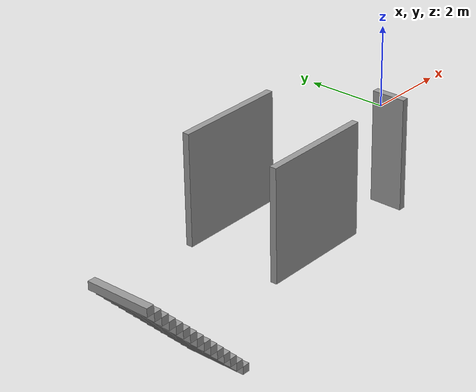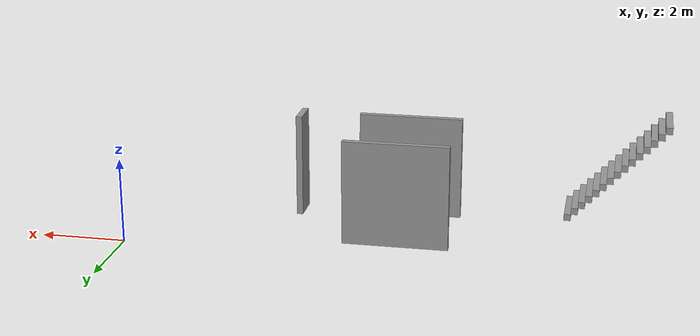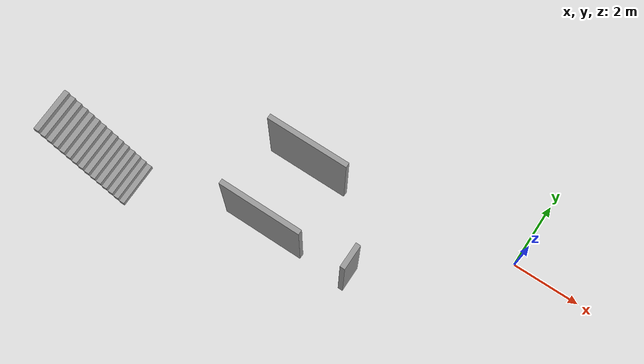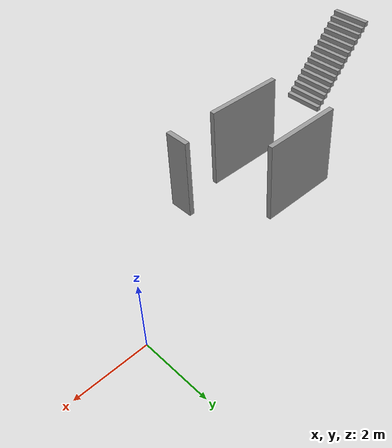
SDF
<sdf version="1.7">
 <model name="batimentH">
  <link name="Stairs_1">
   <visual name="Stairs_1_Visual_0">
    <pose>-10.1559 -3.96803 0.083333 0 -0 -1.5708</pose>
    <geometry><box><size>1.32885 0.162742 0.166667</size></box></geometry>
    <material>
     <script><uri>file://media/materials/scripts/gazebo.material</uri><name>Gazebo/Grey</name></script>
     <ambient>1 1 1 1</ambient>
     <shader type="pixel"/>
    </material>
    <meta><layer>0</layer></meta>
   </visual>
   <visual name="Stairs_1_Visual_1">
    <pose>-10.3187 -3.96803 0.25 0 -0 -1.5708</pose>
    <geometry><box><size>1.32885 0.162742 0.166667</size></box></geometry>
    <material>
     <script><uri>file://media/materials/scripts/gazebo.material</uri><name>Gazebo/Grey</name></script>
     <ambient>1 1 1 1</ambient>
     <shader type="pixel"/>
    </material>
    <meta><layer>0</layer></meta>
   </visual>
   <visual name="Stairs_1_Visual_2">
    <pose>-10.4814 -3.96803 0.416667 0 -0 -1.5708</pose>
    <geometry><box><size>1.32885 0.162742 0.166667</size></box></geometry>
    <material>
     <script><uri>file://media/materials/scripts/gazebo.material</uri><name>Gazebo/Grey</name></script>
     <ambient>1 1 1 1</ambient>
     <shader type="pixel"/>
    </material>
    <meta><layer>0</layer></meta>
   </visual>
   <visual name="Stairs_1_Visual_3">
    <pose>-10.6442 -3.96803 0.583333 0 -0 -1.5708</pose>
    <geometry><box><size>1.32885 0.162742 0.166667</size></box></geometry>
    <material>
     <script><uri>file://media/materials/scripts/gazebo.material</uri><name>Gazebo/Grey</name></script>
     <ambient>1 1 1 1</ambient>
     <shader type="pixel"/>
    </material>
    <meta><layer>0</layer></meta>
   </visual>
   <visual name="Stairs_1_Visual_4">
    <pose>-10.8069 -3.96803 0.75 0 -0 -1.5708</pose>
    <geometry><box><size>1.32885 0.162742 0.166667</size></box></geometry>
    <material>
     <script><uri>file://media/materials/scripts/gazebo.material</uri><name>Gazebo/Grey</name></script>
     <ambient>1 1 1 1</ambient>
     <shader type="pixel"/>
    </material>
    <meta><layer>0</layer></meta>
   </visual>
   <visual name="Stairs_1_Visual_5">
    <pose>-10.9697 -3.96803 0.916667 0 -0 -1.5708</pose>
    <geometry><box><size>1.32885 0.162742 0.166667</size></box></geometry>
    <material>
     <script><uri>file://media/materials/scripts/gazebo.material</uri><name>Gazebo/Grey</name></script>
     <ambient>1 1 1 1</ambient>
     <shader type="pixel"/>
    </material>
    <meta><layer>0</layer></meta>
   </visual>
   <visual name="Stairs_1_Visual_6">
    <pose>-11.1324 -3.96803 1.08333 0 -0 -1.5708</pose>
    <geometry><box><size>1.32885 0.162742 0.166667</size></box></geometry>
    <material>
     <script><uri>file://media/materials/scripts/gazebo.material</uri><name>Gazebo/Grey</name></script>
     <ambient>1 1 1 1</ambient>
     <shader type="pixel"/>
    </material>
    <meta><layer>0</layer></meta>
   </visual>
   <visual name="Stairs_1_Visual_7">
    <pose>-11.2951 -3.96803 1.25 0 -0 -1.5708</pose>
    <geometry><box><size>1.32885 0.162742 0.166667</size></box></geometry>
    <material>
     <script><uri>file://media/materials/scripts/gazebo.material</uri><name>Gazebo/Grey</name></script>
     <ambient>1 1 1 1</ambient>
     <shader type="pixel"/>
    </material>
    <meta><layer>0</layer></meta>
   </visual>
   <visual name="Stairs_1_Visual_8">
    <pose>-11.4579 -3.96803 1.41667 0 -0 -1.5708</pose>
    <geometry><box><size>1.32885 0.162742 0.166667</size></box></geometry>
    <material>
     <script><uri>file://media/materials/scripts/gazebo.material</uri><name>Gazebo/Grey</name></script>
     <ambient>1 1 1 1</ambient>
     <shader type="pixel"/>
    </material>
    <meta><layer>0</layer></meta>
   </visual>
   <visual name="Stairs_1_Visual_9">
    <pose>-11.6206 -3.96803 1.58333 0 -0 -1.5708</pose>
    <geometry><box><size>1.32885 0.162742 0.166667</size></box></geometry>
    <material>
     <script><uri>file://media/materials/scripts/gazebo.material</uri><name>Gazebo/Grey</name></script>
     <ambient>1 1 1 1</ambient>
     <shader type="pixel"/>
    </material>
    <meta><layer>0</layer></meta>
   </visual>
   <visual name="Stairs_1_Visual_10">
    <pose>-11.7834 -3.96803 1.75 0 -0 -1.5708</pose>
    <geometry><box><size>1.32885 0.162742 0.166667</size></box></geometry>
    <material>
     <script><uri>file://media/materials/scripts/gazebo.material</uri><name>Gazebo/Grey</name></script>
     <ambient>1 1 1 1</ambient>
     <shader type="pixel"/>
    </material>
    <meta><layer>0</layer></meta>
   </visual>
   <visual name="Stairs_1_Visual_11">
    <pose>-11.9461 -3.96803 1.91667 0 -0 -1.5708</pose>
    <geometry><box><size>1.32885 0.162742 0.166667</size></box></geometry>
    <material>
     <script><uri>file://media/materials/scripts/gazebo.material</uri><name>Gazebo/Grey</name></script>
     <ambient>1 1 1 1</ambient>
     <shader type="pixel"/>
    </material>
    <meta><layer>0</layer></meta>
   </visual>
   <visual name="Stairs_1_Visual_12">
    <pose>-12.1089 -3.96803 2.08333 0 -0 -1.5708</pose>
    <geometry><box><size>1.32885 0.162742 0.166667</size></box></geometry>
    <material>
     <script><uri>file://media/materials/scripts/gazebo.material</uri><name>Gazebo/Grey</name></script>
     <ambient>1 1 1 1</ambient>
     <shader type="pixel"/>
    </material>
    <meta><layer>0</layer></meta>
   </visual>
   <visual name="Stairs_1_Visual_13">
    <pose>-12.2716 -3.96803 2.25 0 -0 -1.5708</pose>
    <geometry><box><size>1.32885 0.162742 0.166667</size></box></geometry>
    <material>
     <script><uri>file://media/materials/scripts/gazebo.material</uri><name>Gazebo/Grey</name></script>
     <ambient>1 1 1 1</ambient>
     <shader type="pixel"/>
    </material>
    <meta><layer>0</layer></meta>
   </visual>
   <visual name="Stairs_1_Visual_14">
    <pose>-12.4343 -3.96803 2.41667 0 -0 -1.5708</pose>
    <geometry><box><size>1.32885 0.162742 0.166667</size></box></geometry>
    <material>
     <script><uri>file://media/materials/scripts/gazebo.material</uri><name>Gazebo/Grey</name></script>
     <ambient>1 1 1 1</ambient>
     <shader type="pixel"/>
    </material>
    <meta><layer>0</layer></meta>
   </visual>
   <collision name="Stairs_1_Collision_0">
    <pose>-10.1559 -3.96803 0.083333 0 0 -1.5708</pose>
    <geometry><box><size>1.32885 0.162742 0.166667</size></box></geometry>
    <surface>
     <friction>
      <ode><mu>1</mu><mu2>1</mu2><fdir1>0 0 0</fdir1><slip1>0</slip1><slip2>0</slip2></ode>
      <torsional>
       <coefficient>1</coefficient>
       <patch_radius>0</patch_radius>
       <surface_radius>0</surface_radius>
       <use_patch_radius>1</use_patch_radius>
       <ode><slip>0</slip></ode>
      </torsional>
     </friction>
     <bounce><restitution_coefficient>0</restitution_coefficient><threshold>1e+06</threshold></bounce>
     <contact>
      <collide_without_contact>0</collide_without_contact>
      <collide_without_contact_bitmask>1</collide_without_contact_bitmask>
      <collide_bitmask>1</collide_bitmask>
      <ode>
       <soft_cfm>0</soft_cfm>
       <soft_erp>0.2</soft_erp>
       <kp>1e+13</kp>
       <kd>1</kd>
       <max_vel>0.01</max_vel>
       <min_depth>0</min_depth>
      </ode>
      <bullet>
       <split_impulse>1</split_impulse>
       <split_impulse_penetration_threshold>-0.01</split_impulse_penetration_threshold>
       <soft_cfm>0</soft_cfm>
       <soft_erp>0.2</soft_erp>
       <kp>1e+13</kp>
       <kd>1</kd>
      </bullet>
     </contact>
    </surface>
   </collision>
   <collision name="Stairs_1_Collision_1">
    <pose>-10.3187 -3.96803 0.25 0 0 -1.5708</pose>
    <geometry><box><size>1.32885 0.162742 0.166667</size></box></geometry>
    <surface>
     <friction>
      <ode><mu>1</mu><mu2>1</mu2><fdir1>0 0 0</fdir1><slip1>0</slip1><slip2>0</slip2></ode>
      <torsional>
       <coefficient>1</coefficient>
       <patch_radius>0</patch_radius>
       <surface_radius>0</surface_radius>
       <use_patch_radius>1</use_patch_radius>
       <ode><slip>0</slip></ode>
      </torsional>
     </friction>
     <bounce><restitution_coefficient>0</restitution_coefficient><threshold>1e+06</threshold></bounce>
     <contact>
      <collide_without_contact>0</collide_without_contact>
      <collide_without_contact_bitmask>1</collide_without_contact_bitmask>
      <collide_bitmask>1</collide_bitmask>
      <ode>
       <soft_cfm>0</soft_cfm>
       <soft_erp>0.2</soft_erp>
       <kp>1e+13</kp>
       <kd>1</kd>
       <max_vel>0.01</max_vel>
       <min_depth>0</min_depth>
      </ode>
      <bullet>
       <split_impulse>1</split_impulse>
       <split_impulse_penetration_threshold>-0.01</split_impulse_penetration_threshold>
       <soft_cfm>0</soft_cfm>
       <soft_erp>0.2</soft_erp>
       <kp>1e+13</kp>
       <kd>1</kd>
      </bullet>
     </contact>
    </surface>
   </collision>
   <collision name="Stairs_1_Collision_2">
    <pose>-10.4814 -3.96803 0.416667 0 0 -1.5708</pose>
    <geometry><box><size>1.32885 0.162742 0.166667</size></box></geometry>
    <surface>
     <friction>
      <ode><mu>1</mu><mu2>1</mu2><fdir1>0 0 0</fdir1><slip1>0</slip1><slip2>0</slip2></ode>
      <torsional>
       <coefficient>1</coefficient>
       <patch_radius>0</patch_radius>
       <surface_radius>0</surface_radius>
       <use_patch_radius>1</use_patch_radius>
       <ode><slip>0</slip></ode>
      </torsional>
     </friction>
     <bounce><restitution_coefficient>0</restitution_coefficient><threshold>1e+06</threshold></bounce>
     <contact>
      <collide_without_contact>0</collide_without_contact>
      <collide_without_contact_bitmask>1</collide_without_contact_bitmask>
      <collide_bitmask>1</collide_bitmask>
      <ode>
       <soft_cfm>0</soft_cfm>
       <soft_erp>0.2</soft_erp>
       <kp>1e+13</kp>
       <kd>1</kd>
       <max_vel>0.01</max_vel>
       <min_depth>0</min_depth>
      </ode>
      <bullet>
       <split_impulse>1</split_impulse>
       <split_impulse_penetration_threshold>-0.01</split_impulse_penetration_threshold>
       <soft_cfm>0</soft_cfm>
       <soft_erp>0.2</soft_erp>
       <kp>1e+13</kp>
       <kd>1</kd>
      </bullet>
     </contact>
    </surface>
   </collision>
   <collision name="Stairs_1_Collision_3">
    <pose>-10.6442 -3.96803 0.583333 0 0 -1.5708</pose>
    <geometry><box><size>1.32885 0.162742 0.166667</size></box></geometry>
    <surface>
     <friction>
      <ode><mu>1</mu><mu2>1</mu2><fdir1>0 0 0</fdir1><slip1>0</slip1><slip2>0</slip2></ode>
      <torsional>
       <coefficient>1</coefficient>
       <patch_radius>0</patch_radius>
       <surface_radius>0</surface_radius>
       <use_patch_radius>1</use_patch_radius>
       <ode><slip>0</slip></ode>
      </torsional>
     </friction>
     <bounce><restitution_coefficient>0</restitution_coefficient><threshold>1e+06</threshold></bounce>
     <contact>
      <collide_without_contact>0</collide_without_contact>
      <collide_without_contact_bitmask>1</collide_without_contact_bitmask>
      <collide_bitmask>1</collide_bitmask>
      <ode>
       <soft_cfm>0</soft_cfm>
       <soft_erp>0.2</soft_erp>
       <kp>1e+13</kp>
       <kd>1</kd>
       <max_vel>0.01</max_vel>
       <min_depth>0</min_depth>
      </ode>
      <bullet>
       <split_impulse>1</split_impulse>
       <split_impulse_penetration_threshold>-0.01</split_impulse_penetration_threshold>
       <soft_cfm>0</soft_cfm>
       <soft_erp>0.2</soft_erp>
       <kp>1e+13</kp>
       <kd>1</kd>
      </bullet>
     </contact>
    </surface>
   </collision>
   <collision name="Stairs_1_Collision_4">
    <pose>-10.8069 -3.96803 0.75 0 0 -1.5708</pose>
    <geometry><box><size>1.32885 0.162742 0.166667</size></box></geometry>
    <surface>
     <friction>
      <ode><mu>1</mu><mu2>1</mu2><fdir1>0 0 0</fdir1><slip1>0</slip1><slip2>0</slip2></ode>
      <torsional>
       <coefficient>1</coefficient>
       <patch_radius>0</patch_radius>
       <surface_radius>0</surface_radius>
       <use_patch_radius>1</use_patch_radius>
       <ode><slip>0</slip></ode>
      </torsional>
     </friction>
     <bounce><restitution_coefficient>0</restitution_coefficient><threshold>1e+06</threshold></bounce>
     <contact>
      <collide_without_contact>0</collide_without_contact>
      <collide_without_contact_bitmask>1</collide_without_contact_bitmask>
      <collide_bitmask>1</collide_bitmask>
      <ode>
       <soft_cfm>0</soft_cfm>
       <soft_erp>0.2</soft_erp>
       <kp>1e+13</kp>
       <kd>1</kd>
       <max_vel>0.01</max_vel>
       <min_depth>0</min_depth>
      </ode>
      <bullet>
       <split_impulse>1</split_impulse>
       <split_impulse_penetration_threshold>-0.01</split_impulse_penetration_threshold>
       <soft_cfm>0</soft_cfm>
       <soft_erp>0.2</soft_erp>
       <kp>1e+13</kp>
       <kd>1</kd>
      </bullet>
     </contact>
    </surface>
   </collision>
   <collision name="Stairs_1_Collision_5">
    <pose>-10.9697 -3.96803 0.916667 0 0 -1.5708</pose>
    <geometry><box><size>1.32885 0.162742 0.166667</size></box></geometry>
    <surface>
     <friction>
      <ode><mu>1</mu><mu2>1</mu2><fdir1>0 0 0</fdir1><slip1>0</slip1><slip2>0</slip2></ode>
      <torsional>
       <coefficient>1</coefficient>
       <patch_radius>0</patch_radius>
       <surface_radius>0</surface_radius>
       <use_patch_radius>1</use_patch_radius>
       <ode><slip>0</slip></ode>
      </torsional>
     </friction>
     <bounce><restitution_coefficient>0</restitution_coefficient><threshold>1e+06</threshold></bounce>
     <contact>
      <collide_without_contact>0</collide_without_contact>
      <collide_without_contact_bitmask>1</collide_without_contact_bitmask>
      <collide_bitmask>1</collide_bitmask>
      <ode>
       <soft_cfm>0</soft_cfm>
       <soft_erp>0.2</soft_erp>
       <kp>1e+13</kp>
       <kd>1</kd>
       <max_vel>0.01</max_vel>
       <min_depth>0</min_depth>
      </ode>
      <bullet>
       <split_impulse>1</split_impulse>
       <split_impulse_penetration_threshold>-0.01</split_impulse_penetration_threshold>
       <soft_cfm>0</soft_cfm>
       <soft_erp>0.2</soft_erp>
       <kp>1e+13</kp>
       <kd>1</kd>
      </bullet>
     </contact>
    </surface>
   </collision>
   <collision name="Stairs_1_Collision_6">
    <pose>-11.1324 -3.96803 1.08333 0 0 -1.5708</pose>
    <geometry><box><size>1.32885 0.162742 0.166667</size></box></geometry>
    <surface>
     <friction>
      <ode><mu>1</mu><mu2>1</mu2><fdir1>0 0 0</fdir1><slip1>0</slip1><slip2>0</slip2></ode>
      <torsional>
       <coefficient>1</coefficient>
       <patch_radius>0</patch_radius>
       <surface_radius>0</surface_radius>
       <use_patch_radius>1</use_patch_radius>
       <ode><slip>0</slip></ode>
      </torsional>
     </friction>
     <bounce><restitution_coefficient>0</restitution_coefficient><threshold>1e+06</threshold></bounce>
     <contact>
      <collide_without_contact>0</collide_without_contact>
      <collide_without_contact_bitmask>1</collide_without_contact_bitmask>
      <collide_bitmask>1</collide_bitmask>
      <ode>
       <soft_cfm>0</soft_cfm>
       <soft_erp>0.2</soft_erp>
       <kp>1e+13</kp>
       <kd>1</kd>
       <max_vel>0.01</max_vel>
       <min_depth>0</min_depth>
      </ode>
      <bullet>
       <split_impulse>1</split_impulse>
       <split_impulse_penetration_threshold>-0.01</split_impulse_penetration_threshold>
       <soft_cfm>0</soft_cfm>
       <soft_erp>0.2</soft_erp>
       <kp>1e+13</kp>
       <kd>1</kd>
      </bullet>
     </contact>
    </surface>
   </collision>
   <collision name="Stairs_1_Collision_7">
    <pose>-11.2951 -3.96803 1.25 0 0 -1.5708</pose>
    <geometry><box><size>1.32885 0.162742 0.166667</size></box></geometry>
    <surface>
     <friction>
      <ode><mu>1</mu><mu2>1</mu2><fdir1>0 0 0</fdir1><slip1>0</slip1><slip2>0</slip2></ode>
      <torsional>
       <coefficient>1</coefficient>
       <patch_radius>0</patch_radius>
       <surface_radius>0</surface_radius>
       <use_patch_radius>1</use_patch_radius>
       <ode><slip>0</slip></ode>
      </torsional>
     </friction>
     <bounce><restitution_coefficient>0</restitution_coefficient><threshold>1e+06</threshold></bounce>
     <contact>
      <collide_without_contact>0</collide_without_contact>
      <collide_without_contact_bitmask>1</collide_without_contact_bitmask>
      <collide_bitmask>1</collide_bitmask>
      <ode>
       <soft_cfm>0</soft_cfm>
       <soft_erp>0.2</soft_erp>
       <kp>1e+13</kp>
       <kd>1</kd>
       <max_vel>0.01</max_vel>
       <min_depth>0</min_depth>
      </ode>
      <bullet>
       <split_impulse>1</split_impulse>
       <split_impulse_penetration_threshold>-0.01</split_impulse_penetration_threshold>
       <soft_cfm>0</soft_cfm>
       <soft_erp>0.2</soft_erp>
       <kp>1e+13</kp>
       <kd>1</kd>
      </bullet>
     </contact>
    </surface>
   </collision>
   <collision name="Stairs_1_Collision_8">
    <pose>-11.4579 -3.96803 1.41667 0 0 -1.5708</pose>
    <geometry><box><size>1.32885 0.162742 0.166667</size></box></geometry>
    <surface>
     <friction>
      <ode><mu>1</mu><mu2>1</mu2><fdir1>0 0 0</fdir1><slip1>0</slip1><slip2>0</slip2></ode>
      <torsional>
       <coefficient>1</coefficient>
       <patch_radius>0</patch_radius>
       <surface_radius>0</surface_radius>
       <use_patch_radius>1</use_patch_radius>
       <ode><slip>0</slip></ode>
      </torsional>
     </friction>
     <bounce><restitution_coefficient>0</restitution_coefficient><threshold>1e+06</threshold></bounce>
     <contact>
      <collide_without_contact>0</collide_without_contact>
      <collide_without_contact_bitmask>1</collide_without_contact_bitmask>
      <collide_bitmask>1</collide_bitmask>
      <ode>
       <soft_cfm>0</soft_cfm>
       <soft_erp>0.2</soft_erp>
       <kp>1e+13</kp>
       <kd>1</kd>
       <max_vel>0.01</max_vel>
       <min_depth>0</min_depth>
      </ode>
      <bullet>
       <split_impulse>1</split_impulse>
       <split_impulse_penetration_threshold>-0.01</split_impulse_penetration_threshold>
       <soft_cfm>0</soft_cfm>
       <soft_erp>0.2</soft_erp>
       <kp>1e+13</kp>
       <kd>1</kd>
      </bullet>
     </contact>
    </surface>
   </collision>
   <collision name="Stairs_1_Collision_10">
    <pose>-11.7834 -3.96803 1.75 0 0 -1.5708</pose>
    <geometry><box><size>1.32885 0.162742 0.166667</size></box></geometry>
    <surface>
     <friction>
      <ode><mu>1</mu><mu2>1</mu2><fdir1>0 0 0</fdir1><slip1>0</slip1><slip2>0</slip2></ode>
      <torsional>
       <coefficient>1</coefficient>
       <patch_radius>0</patch_radius>
       <surface_radius>0</surface_radius>
       <use_patch_radius>1</use_patch_radius>
       <ode><slip>0</slip></ode>
      </torsional>
     </friction>
     <bounce><restitution_coefficient>0</restitution_coefficient><threshold>1e+06</threshold></bounce>
     <contact>
      <collide_without_contact>0</collide_without_contact>
      <collide_without_contact_bitmask>1</collide_without_contact_bitmask>
      <collide_bitmask>1</collide_bitmask>
      <ode>
       <soft_cfm>0</soft_cfm>
       <soft_erp>0.2</soft_erp>
       <kp>1e+13</kp>
       <kd>1</kd>
       <max_vel>0.01</max_vel>
       <min_depth>0</min_depth>
      </ode>
      <bullet>
       <split_impulse>1</split_impulse>
       <split_impulse_penetration_threshold>-0.01</split_impulse_penetration_threshold>
       <soft_cfm>0</soft_cfm>
       <soft_erp>0.2</soft_erp>
       <kp>1e+13</kp>
       <kd>1</kd>
      </bullet>
     </contact>
    </surface>
   </collision>
   <collision name="Stairs_1_Collision_9">
    <pose>-11.6206 -3.96803 1.58333 0 0 -1.5708</pose>
    <geometry><box><size>1.32885 0.162742 0.166667</size></box></geometry>
    <surface>
     <friction>
      <ode><mu>1</mu><mu2>1</mu2><fdir1>0 0 0</fdir1><slip1>0</slip1><slip2>0</slip2></ode>
      <torsional>
       <coefficient>1</coefficient>
       <patch_radius>0</patch_radius>
       <surface_radius>0</surface_radius>
       <use_patch_radius>1</use_patch_radius>
       <ode><slip>0</slip></ode>
      </torsional>
     </friction>
     <bounce><restitution_coefficient>0</restitution_coefficient><threshold>1e+06</threshold></bounce>
     <contact>
      <collide_without_contact>0</collide_without_contact>
      <collide_without_contact_bitmask>1</collide_without_contact_bitmask>
      <collide_bitmask>1</collide_bitmask>
      <ode>
       <soft_cfm>0</soft_cfm>
       <soft_erp>0.2</soft_erp>
       <kp>1e+13</kp>
       <kd>1</kd>
       <max_vel>0.01</max_vel>
       <min_depth>0</min_depth>
      </ode>
      <bullet>
       <split_impulse>1</split_impulse>
       <split_impulse_penetration_threshold>-0.01</split_impulse_penetration_threshold>
       <soft_cfm>0</soft_cfm>
       <soft_erp>0.2</soft_erp>
       <kp>1e+13</kp>
       <kd>1</kd>
      </bullet>
     </contact>
    </surface>
   </collision>
   <collision name="Stairs_1_Collision_11">
    <pose>-11.9461 -3.96803 1.91667 0 0 -1.5708</pose>
    <geometry><box><size>1.32885 0.162742 0.166667</size></box></geometry>
    <surface>
     <friction>
      <ode><mu>1</mu><mu2>1</mu2><fdir1>0 0 0</fdir1><slip1>0</slip1><slip2>0</slip2></ode>
      <torsional>
       <coefficient>1</coefficient>
       <patch_radius>0</patch_radius>
       <surface_radius>0</surface_radius>
       <use_patch_radius>1</use_patch_radius>
       <ode><slip>0</slip></ode>
      </torsional>
     </friction>
     <bounce><restitution_coefficient>0</restitution_coefficient><threshold>1e+06</threshold></bounce>
     <contact>
      <collide_without_contact>0</collide_without_contact>
      <collide_without_contact_bitmask>1</collide_without_contact_bitmask>
      <collide_bitmask>1</collide_bitmask>
      <ode>
       <soft_cfm>0</soft_cfm>
       <soft_erp>0.2</soft_erp>
       <kp>1e+13</kp>
       <kd>1</kd>
       <max_vel>0.01</max_vel>
       <min_depth>0</min_depth>
      </ode>
      <bullet>
       <split_impulse>1</split_impulse>
       <split_impulse_penetration_threshold>-0.01</split_impulse_penetration_threshold>
       <soft_cfm>0</soft_cfm>
       <soft_erp>0.2</soft_erp>
       <kp>1e+13</kp>
       <kd>1</kd>
      </bullet>
     </contact>
    </surface>
   </collision>
   <collision name="Stairs_1_Collision_12">
    <pose>-12.1089 -3.96803 2.08333 0 0 -1.5708</pose>
    <geometry><box><size>1.32885 0.162742 0.166667</size></box></geometry>
    <surface>
     <friction>
      <ode><mu>1</mu><mu2>1</mu2><fdir1>0 0 0</fdir1><slip1>0</slip1><slip2>0</slip2></ode>
      <torsional>
       <coefficient>1</coefficient>
       <patch_radius>0</patch_radius>
       <surface_radius>0</surface_radius>
       <use_patch_radius>1</use_patch_radius>
       <ode><slip>0</slip></ode>
      </torsional>
     </friction>
     <bounce><restitution_coefficient>0</restitution_coefficient><threshold>1e+06</threshold></bounce>
     <contact>
      <collide_without_contact>0</collide_without_contact>
      <collide_without_contact_bitmask>1</collide_without_contact_bitmask>
      <collide_bitmask>1</collide_bitmask>
      <ode>
       <soft_cfm>0</soft_cfm>
       <soft_erp>0.2</soft_erp>
       <kp>1e+13</kp>
       <kd>1</kd>
       <max_vel>0.01</max_vel>
       <min_depth>0</min_depth>
      </ode>
      <bullet>
       <split_impulse>1</split_impulse>
       <split_impulse_penetration_threshold>-0.01</split_impulse_penetration_threshold>
       <soft_cfm>0</soft_cfm>
       <soft_erp>0.2</soft_erp>
       <kp>1e+13</kp>
       <kd>1</kd>
      </bullet>
     </contact>
    </surface>
   </collision>
   <collision name="Stairs_1_Collision_13">
    <pose>-12.2716 -3.96803 2.25 0 0 -1.5708</pose>
    <geometry><box><size>1.32885 0.162742 0.166667</size></box></geometry>
    <surface>
     <friction>
      <ode><mu>1</mu><mu2>1</mu2><fdir1>0 0 0</fdir1><slip1>0</slip1><slip2>0</slip2></ode>
      <torsional>
       <coefficient>1</coefficient>
       <patch_radius>0</patch_radius>
       <surface_radius>0</surface_radius>
       <use_patch_radius>1</use_patch_radius>
       <ode><slip>0</slip></ode>
      </torsional>
     </friction>
     <bounce><restitution_coefficient>0</restitution_coefficient><threshold>1e+06</threshold></bounce>
     <contact>
      <collide_without_contact>0</collide_without_contact>
      <collide_without_contact_bitmask>1</collide_without_contact_bitmask>
      <collide_bitmask>1</collide_bitmask>
      <ode>
       <soft_cfm>0</soft_cfm>
       <soft_erp>0.2</soft_erp>
       <kp>1e+13</kp>
       <kd>1</kd>
       <max_vel>0.01</max_vel>
       <min_depth>0</min_depth>
      </ode>
      <bullet>
       <split_impulse>1</split_impulse>
       <split_impulse_penetration_threshold>-0.01</split_impulse_penetration_threshold>
       <soft_cfm>0</soft_cfm>
       <soft_erp>0.2</soft_erp>
       <kp>1e+13</kp>
       <kd>1</kd>
      </bullet>
     </contact>
    </surface>
   </collision>
   <collision name="Stairs_1_Collision_14">
    <pose>-12.4343 -3.96803 2.41667 0 0 -1.5708</pose>
    <geometry><box><size>1.32885 0.162742 0.166667</size></box></geometry>
    <surface>
     <friction>
      <ode><mu>1</mu><mu2>1</mu2><fdir1>0 0 0</fdir1><slip1>0</slip1><slip2>0</slip2></ode>
      <torsional>
       <coefficient>1</coefficient>
       <patch_radius>0</patch_radius>
       <surface_radius>0</surface_radius>
       <use_patch_radius>1</use_patch_radius>
       <ode><slip>0</slip></ode>
      </torsional>
     </friction>
     <bounce><restitution_coefficient>0</restitution_coefficient><threshold>1e+06</threshold></bounce>
     <contact>
      <collide_without_contact>0</collide_without_contact>
      <collide_without_contact_bitmask>1</collide_without_contact_bitmask>
      <collide_bitmask>1</collide_bitmask>
      <ode>
       <soft_cfm>0</soft_cfm>
       <soft_erp>0.2</soft_erp>
       <kp>1e+13</kp>
       <kd>1</kd>
       <max_vel>0.01</max_vel>
       <min_depth>0</min_depth>
      </ode>
      <bullet>
       <split_impulse>1</split_impulse>
       <split_impulse_penetration_threshold>-0.01</split_impulse_penetration_threshold>
       <soft_cfm>0</soft_cfm>
       <soft_erp>0.2</soft_erp>
       <kp>1e+13</kp>
       <kd>1</kd>
      </bullet>
     </contact>
    </surface>
   </collision>
  </link>
  <link name="Wall_15">
   <pose>-6.31775 -3.09056 0 0 -0 0</pose>
   <visual name="Wall_15_Visual">
    <pose>0 0 1.25 0 -0 0</pose>
    <geometry><box><size>2.5 0.15 2.5</size></box></geometry>
    <material>
     <script><uri>file://media/materials/scripts/gazebo.material</uri><name>Gazebo/Grey</name></script>
     <ambient>1 1 1 1</ambient>
     <shader type="pixel"/>
    </material>
    <meta><layer>0</layer></meta>
   </visual>
   <collision name="Wall_15_Collision">
    <pose>0 0 1.25 0 -0 0</pose>
    <geometry><box><size>2.5 0.15 2.5</size></box></geometry>
    <surface>
     <friction>
      <ode><mu>1</mu><mu2>1</mu2><fdir1>0 0 0</fdir1><slip1>0</slip1><slip2>0</slip2></ode>
      <torsional>
       <coefficient>1</coefficient>
       <patch_radius>0</patch_radius>
       <surface_radius>0</surface_radius>
       <use_patch_radius>1</use_patch_radius>
       <ode><slip>0</slip></ode>
      </torsional>
     </friction>
     <bounce><restitution_coefficient>0</restitution_coefficient><threshold>1e+06</threshold></bounce>
     <contact>
      <collide_without_contact>0</collide_without_contact>
      <collide_without_contact_bitmask>1</collide_without_contact_bitmask>
      <collide_bitmask>1</collide_bitmask>
      <ode>
       <soft_cfm>0</soft_cfm>
       <soft_erp>0.2</soft_erp>
       <kp>1e+13</kp>
       <kd>1</kd>
       <max_vel>0.01</max_vel>
       <min_depth>0</min_depth>
      </ode>
      <bullet>
       <split_impulse>1</split_impulse>
       <split_impulse_penetration_threshold>-0.01</split_impulse_penetration_threshold>
       <soft_cfm>0</soft_cfm>
       <soft_erp>0.2</soft_erp>
       <kp>1e+13</kp>
       <kd>1</kd>
      </bullet>
     </contact>
    </surface>
   </collision>
  </link>
  <link name="Wall_18">
   <pose>-6.30246 -0.894472 0 0 -0 0</pose>
   <visual name="Wall_18_Visual">
    <pose>0 0 1.25 0 -0 0</pose>
    <geometry><box><size>2.5 0.15 2.5</size></box></geometry>
    <material>
     <script><uri>file://media/materials/scripts/gazebo.material</uri><name>Gazebo/Grey</name></script>
     <ambient>1 1 1 1</ambient>
     <shader type="pixel"/>
    </material>
    <meta><layer>0</layer></meta>
   </visual>
   <collision name="Wall_18_Collision">
    <pose>0 0 1.25 0 -0 0</pose>
    <geometry><box><size>2.5 0.15 2.5</size></box></geometry>
    <surface>
     <friction>
      <ode><mu>1</mu><mu2>1</mu2><fdir1>0 0 0</fdir1><slip1>0</slip1><slip2>0</slip2></ode>
      <torsional>
       <coefficient>1</coefficient>
       <patch_radius>0</patch_radius>
       <surface_radius>0</surface_radius>
       <use_patch_radius>1</use_patch_radius>
       <ode><slip>0</slip></ode>
      </torsional>
     </friction>
     <bounce><restitution_coefficient>0</restitution_coefficient><threshold>1e+06</threshold></bounce>
     <contact>
      <collide_without_contact>0</collide_without_contact>
      <collide_without_contact_bitmask>1</collide_without_contact_bitmask>
      <collide_bitmask>1</collide_bitmask>
      <ode>
       <soft_cfm>0</soft_cfm>
       <soft_erp>0.2</soft_erp>
       <kp>1e+13</kp>
       <kd>1</kd>
       <max_vel>0.01</max_vel>
       <min_depth>0</min_depth>
      </ode>
      <bullet>
       <split_impulse>1</split_impulse>
       <split_impulse_penetration_threshold>-0.01</split_impulse_penetration_threshold>
       <soft_cfm>0</soft_cfm>
       <soft_erp>0.2</soft_erp>
       <kp>1e+13</kp>
       <kd>1</kd>
      </bullet>
     </contact>
    </surface>
   </collision>
  </link>
  <link name="Wall_44">
   <pose>-3.66203 -2.89817 0 0 -0 1.5708</pose>
   <visual name="Wall_44_Visual">
    <pose>0 0 1.25 0 -0 0</pose>
    <geometry><box><size>0.75 0.15 2.5</size></box></geometry>
    <material>
     <script><uri>file://media/materials/scripts/gazebo.material</uri><name>Gazebo/Grey</name></script>
     <ambient>1 1 1 1</ambient>
     <shader type="pixel"/>
    </material>
    <meta><layer>0</layer></meta>
   </visual>
   <collision name="Wall_44_Collision">
    <pose>0 0 1.25 0 -0 0</pose>
    <geometry><box><size>0.75 0.15 2.5</size></box></geometry>
    <surface>
     <friction>
      <ode><mu>1</mu><mu2>1</mu2><fdir1>0 0 0</fdir1><slip1>0</slip1><slip2>0</slip2></ode>
      <torsional>
       <coefficient>1</coefficient>
       <patch_radius>0</patch_radius>
       <surface_radius>0</surface_radius>
       <use_patch_radius>1</use_patch_radius>
       <ode><slip>0</slip></ode>
      </torsional>
     </friction>
     <bounce><restitution_coefficient>0</restitution_coefficient><threshold>1e+06</threshold></bounce>
     <contact>
      <collide_without_contact>0</collide_without_contact>
      <collide_without_contact_bitmask>1</collide_without_contact_bitmask>
      <collide_bitmask>1</collide_bitmask>
      <ode>
       <soft_cfm>0</soft_cfm>
       <soft_erp>0.2</soft_erp>
       <kp>1e+13</kp>
       <kd>1</kd>
       <max_vel>0.01</max_vel>
       <min_depth>0</min_depth>
      </ode>
      <bullet>
       <split_impulse>1</split_impulse>
       <split_impulse_penetration_threshold>-0.01</split_impulse_penetration_threshold>
       <soft_cfm>0</soft_cfm>
       <soft_erp>0.2</soft_erp>
       <kp>1e+13</kp>
       <kd>1</kd>
      </bullet>
     </contact>
    </surface>
   </collision>
  </link>
  <static>1</static>
 </model>
</sdf>
